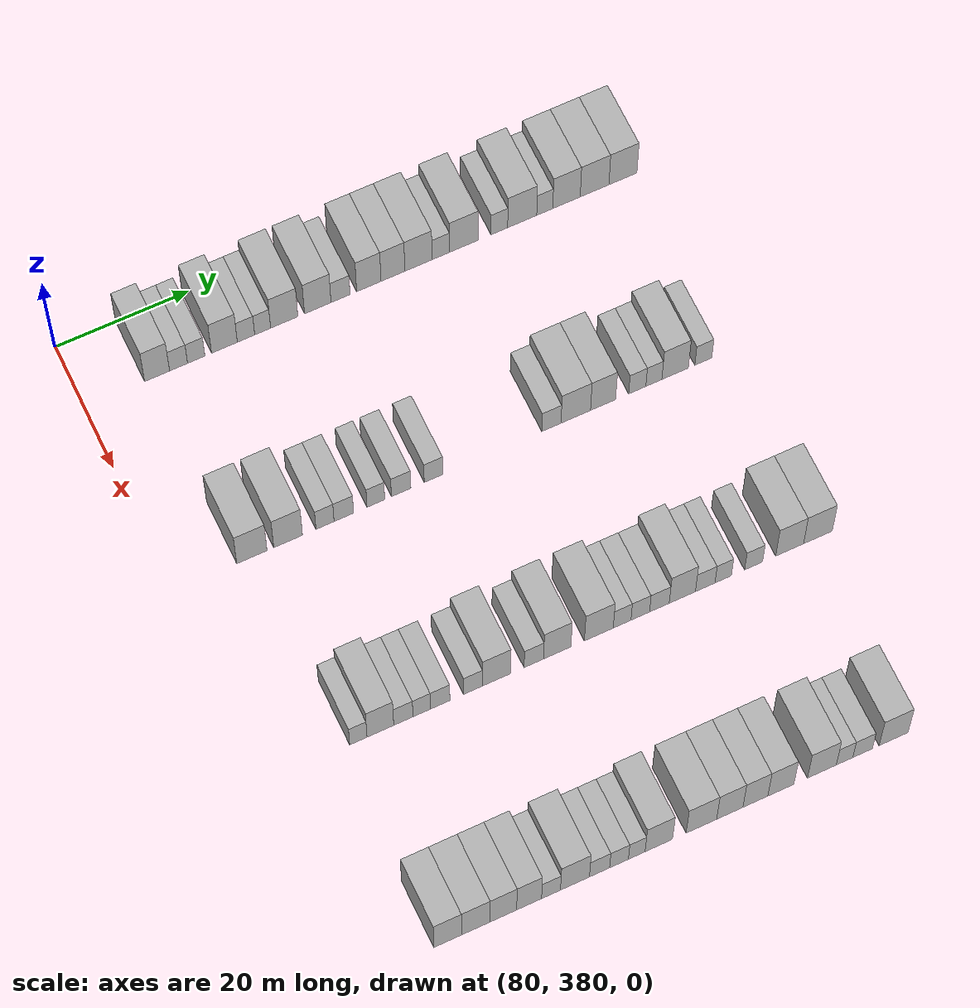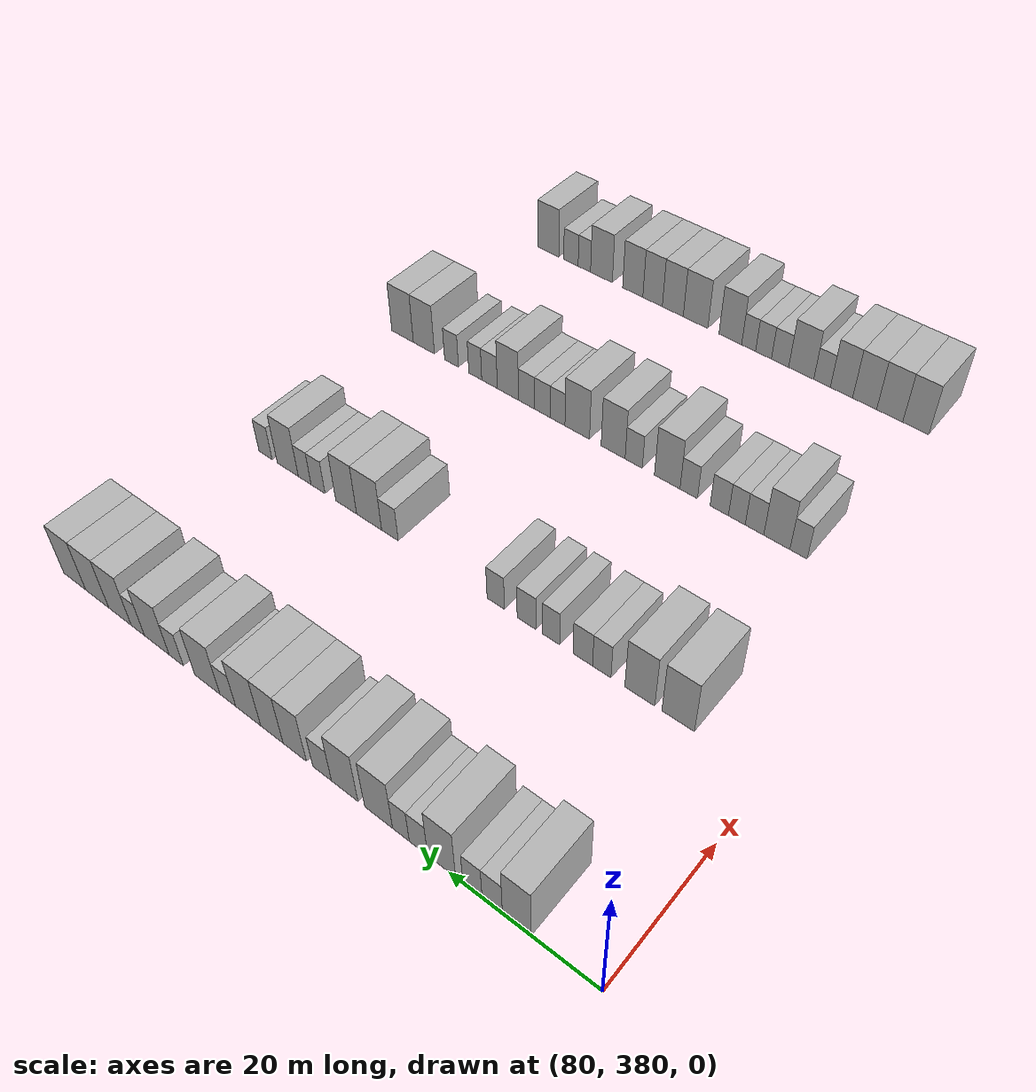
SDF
<sdf version="1.6">
 <world name="default">
  <model name="building_659">
   <static>1</static>
   <pose>85.0000 390.8967 0 0.000000 0.000000 0.000000</pose>
   <link name="link">
    <pose>0 0 4.50 0 0 0</pose>
    <collision name="collision"><geometry><box><size>10.0000 3.7486 9.0000</size></box></geometry></collision>
    <visual name="visual">
     <cast_shadows>0</cast_shadows>
     <geometry><box><size>10.0000 3.7486 9.0000</size></box></geometry>
     <material>
      <script>
       <uri>model://HANNAS_wall/materials/scripts</uri>
       <uri>model://HANNAS_wall/materials/textures</uri>
       <name>vrc/HANNAS_wall</name>
      </script>
     </material>
    </visual>
   </link>
  </model>
  <model name="building_660">
   <static>1</static>
   <pose>85.0000 394.1178 0 0.000000 0.000000 0.000000</pose>
   <link name="link">
    <pose>0 0 3.00 0 0 0</pose>
    <collision name="collision"><geometry><box><size>10.0000 2.6937 6.0000</size></box></geometry></collision>
    <visual name="visual">
     <cast_shadows>0</cast_shadows>
     <geometry><box><size>10.0000 2.6937 6.0000</size></box></geometry>
     <material>
      <script>
       <uri>model://HANNAS_wall/materials/scripts</uri>
       <uri>model://HANNAS_wall/materials/textures</uri>
       <name>vrc/HANNAS_wall</name>
      </script>
     </material>
    </visual>
   </link>
  </model>
  <model name="building_661">
   <static>1</static>
   <pose>85.0000 396.7652 0 0.000000 0.000000 0.000000</pose>
   <link name="link">
    <pose>0 0 3.00 0 0 0</pose>
    <collision name="collision"><geometry><box><size>10.0000 2.6012 6.0000</size></box></geometry></collision>
    <visual name="visual">
     <cast_shadows>0</cast_shadows>
     <geometry><box><size>10.0000 2.6012 6.0000</size></box></geometry>
     <material>
      <script>
       <uri>model://HANNAS_wall/materials/scripts</uri>
       <uri>model://HANNAS_wall/materials/textures</uri>
       <name>vrc/HANNAS_wall</name>
      </script>
     </material>
    </visual>
   </link>
  </model>
  <model name="building_662">
   <static>1</static>
   <pose>85.0000 401.0088 0 0.000000 0.000000 0.000000</pose>
   <link name="link">
    <pose>0 0 4.50 0 0 0</pose>
    <collision name="collision"><geometry><box><size>10.0000 3.8860 9.0000</size></box></geometry></collision>
    <visual name="visual">
     <cast_shadows>0</cast_shadows>
     <geometry><box><size>10.0000 3.8860 9.0000</size></box></geometry>
     <material>
      <script>
       <uri>model://HANNAS_wall/materials/scripts</uri>
       <uri>model://HANNAS_wall/materials/textures</uri>
       <name>vrc/HANNAS_wall</name>
      </script>
     </material>
    </visual>
   </link>
  </model>
  <model name="building_663">
   <static>1</static>
   <pose>85.0000 404.2592 0 0.000000 0.000000 0.000000</pose>
   <link name="link">
    <pose>0 0 3.00 0 0 0</pose>
    <collision name="collision"><geometry><box><size>10.0000 2.6148 6.0000</size></box></geometry></collision>
    <visual name="visual">
     <cast_shadows>0</cast_shadows>
     <geometry><box><size>10.0000 2.6148 6.0000</size></box></geometry>
     <material>
      <script>
       <uri>model://HANNAS_wall/materials/scripts</uri>
       <uri>model://HANNAS_wall/materials/textures</uri>
       <name>vrc/HANNAS_wall</name>
      </script>
     </material>
    </visual>
   </link>
  </model>
  <model name="building_664">
   <static>1</static>
   <pose>85.0000 406.7699 0 0.000000 0.000000 0.000000</pose>
   <link name="link">
    <pose>0 0 3.00 0 0 0</pose>
    <collision name="collision"><geometry><box><size>10.0000 2.4066 6.0000</size></box></geometry></collision>
    <visual name="visual">
     <cast_shadows>0</cast_shadows>
     <geometry><box><size>10.0000 2.4066 6.0000</size></box></geometry>
     <material>
      <script>
       <uri>model://HANNAS_wall/materials/scripts</uri>
       <uri>model://HANNAS_wall/materials/textures</uri>
       <name>vrc/HANNAS_wall</name>
      </script>
     </material>
    </visual>
   </link>
  </model>
  <model name="building_665">
   <static>1</static>
   <pose>85.0000 410.0343 0 0.000000 0.000000 0.000000</pose>
   <link name="link">
    <pose>0 0 4.50 0 0 0</pose>
    <collision name="collision"><geometry><box><size>10.0000 4.1222 9.0000</size></box></geometry></collision>
    <visual name="visual">
     <cast_shadows>0</cast_shadows>
     <geometry><box><size>10.0000 4.1222 9.0000</size></box></geometry>
     <material>
      <script>
       <uri>model://HANNAS_wall/materials/scripts</uri>
       <uri>model://HANNAS_wall/materials/textures</uri>
       <name>vrc/HANNAS_wall</name>
      </script>
     </material>
    </visual>
   </link>
  </model>
  <model name="building_666">
   <static>1</static>
   <pose>85.0000 415.1102 0 0.000000 0.000000 0.000000</pose>
   <link name="link">
    <pose>0 0 4.50 0 0 0</pose>
    <collision name="collision"><geometry><box><size>10.0000 4.0296 9.0000</size></box></geometry></collision>
    <visual name="visual">
     <cast_shadows>0</cast_shadows>
     <geometry><box><size>10.0000 4.0296 9.0000</size></box></geometry>
     <material>
      <script>
       <uri>model://HANNAS_wall/materials/scripts</uri>
       <uri>model://HANNAS_wall/materials/textures</uri>
       <name>vrc/HANNAS_wall</name>
      </script>
     </material>
    </visual>
   </link>
  </model>
  <model name="building_667">
   <static>1</static>
   <pose>85.0000 418.5735 0 0.000000 0.000000 0.000000</pose>
   <link name="link">
    <pose>0 0 3.00 0 0 0</pose>
    <collision name="collision"><geometry><box><size>10.0000 2.8971 6.0000</size></box></geometry></collision>
    <visual name="visual">
     <cast_shadows>0</cast_shadows>
     <geometry><box><size>10.0000 2.8971 6.0000</size></box></geometry>
     <material>
      <script>
       <uri>model://HANNAS_wall/materials/scripts</uri>
       <uri>model://HANNAS_wall/materials/textures</uri>
       <name>vrc/HANNAS_wall</name>
      </script>
     </material>
    </visual>
   </link>
  </model>
  <model name="building_668">
   <static>1</static>
   <pose>85.0000 422.8779 0 0.000000 0.000000 0.000000</pose>
   <link name="link">
    <pose>0 0 4.50 0 0 0</pose>
    <collision name="collision"><geometry><box><size>10.0000 3.7118 9.0000</size></box></geometry></collision>
    <visual name="visual">
     <cast_shadows>0</cast_shadows>
     <geometry><box><size>10.0000 3.7118 9.0000</size></box></geometry>
     <material>
      <script>
       <uri>model://HANNAS_wall/materials/scripts</uri>
       <uri>model://HANNAS_wall/materials/textures</uri>
       <name>vrc/HANNAS_wall</name>
      </script>
     </material>
    </visual>
   </link>
  </model>
  <model name="building_669">
   <static>1</static>
   <pose>85.0000 426.5535 0 0.000000 0.000000 0.000000</pose>
   <link name="link">
    <pose>0 0 4.50 0 0 0</pose>
    <collision name="collision"><geometry><box><size>10.0000 3.6394 9.0000</size></box></geometry></collision>
    <visual name="visual">
     <cast_shadows>0</cast_shadows>
     <geometry><box><size>10.0000 3.6394 9.0000</size></box></geometry>
     <material>
      <script>
       <uri>model://HANNAS_wall/materials/scripts</uri>
       <uri>model://HANNAS_wall/materials/textures</uri>
       <name>vrc/HANNAS_wall</name>
      </script>
     </material>
    </visual>
   </link>
  </model>
  <model name="building_670">
   <static>1</static>
   <pose>85.0000 430.4554 0 0.000000 0.000000 0.000000</pose>
   <link name="link">
    <pose>0 0 4.50 0 0 0</pose>
    <collision name="collision"><geometry><box><size>10.0000 4.1643 9.0000</size></box></geometry></collision>
    <visual name="visual">
     <cast_shadows>0</cast_shadows>
     <geometry><box><size>10.0000 4.1643 9.0000</size></box></geometry>
     <material>
      <script>
       <uri>model://HANNAS_wall/materials/scripts</uri>
       <uri>model://HANNAS_wall/materials/textures</uri>
       <name>vrc/HANNAS_wall</name>
      </script>
     </material>
    </visual>
   </link>
  </model>
  <model name="building_671">
   <static>1</static>
   <pose>85.0000 433.8880 0 0.000000 0.000000 0.000000</pose>
   <link name="link">
    <pose>0 0 3.00 0 0 0</pose>
    <collision name="collision"><geometry><box><size>10.0000 2.7010 6.0000</size></box></geometry></collision>
    <visual name="visual">
     <cast_shadows>0</cast_shadows>
     <geometry><box><size>10.0000 2.7010 6.0000</size></box></geometry>
     <material>
      <script>
       <uri>model://HANNAS_wall/materials/scripts</uri>
       <uri>model://HANNAS_wall/materials/textures</uri>
       <name>vrc/HANNAS_wall</name>
      </script>
     </material>
    </visual>
   </link>
  </model>
  <model name="building_672">
   <static>1</static>
   <pose>85.0000 437.4202 0 0.000000 0.000000 0.000000</pose>
   <link name="link">
    <pose>0 0 4.50 0 0 0</pose>
    <collision name="collision"><geometry><box><size>10.0000 4.3633 9.0000</size></box></geometry></collision>
    <visual name="visual">
     <cast_shadows>0</cast_shadows>
     <geometry><box><size>10.0000 4.3633 9.0000</size></box></geometry>
     <material>
      <script>
       <uri>model://HANNAS_wall/materials/scripts</uri>
       <uri>model://HANNAS_wall/materials/textures</uri>
       <name>vrc/HANNAS_wall</name>
      </script>
     </material>
    </visual>
   </link>
  </model>
  <model name="building_673">
   <static>1</static>
   <pose>85.0000 442.8836 0 0.000000 0.000000 0.000000</pose>
   <link name="link">
    <pose>0 0 3.00 0 0 0</pose>
    <collision name="collision"><geometry><box><size>10.0000 2.5635 6.0000</size></box></geometry></collision>
    <visual name="visual">
     <cast_shadows>0</cast_shadows>
     <geometry><box><size>10.0000 2.5635 6.0000</size></box></geometry>
     <material>
      <script>
       <uri>model://HANNAS_wall/materials/scripts</uri>
       <uri>model://HANNAS_wall/materials/textures</uri>
       <name>vrc/HANNAS_wall</name>
      </script>
     </material>
    </visual>
   </link>
  </model>
  <model name="building_674">
   <static>1</static>
   <pose>85.0000 446.4091 0 0.000000 0.000000 0.000000</pose>
   <link name="link">
    <pose>0 0 4.50 0 0 0</pose>
    <collision name="collision"><geometry><box><size>10.0000 4.4876 9.0000</size></box></geometry></collision>
    <visual name="visual">
     <cast_shadows>0</cast_shadows>
     <geometry><box><size>10.0000 4.4876 9.0000</size></box></geometry>
     <material>
      <script>
       <uri>model://HANNAS_wall/materials/scripts</uri>
       <uri>model://HANNAS_wall/materials/textures</uri>
       <name>vrc/HANNAS_wall</name>
      </script>
     </material>
    </visual>
   </link>
  </model>
  <model name="building_675">
   <static>1</static>
   <pose>85.0000 449.8911 0 0.000000 0.000000 0.000000</pose>
   <link name="link">
    <pose>0 0 3.00 0 0 0</pose>
    <collision name="collision"><geometry><box><size>10.0000 2.4765 6.0000</size></box></geometry></collision>
    <visual name="visual">
     <cast_shadows>0</cast_shadows>
     <geometry><box><size>10.0000 2.4765 6.0000</size></box></geometry>
     <material>
      <script>
       <uri>model://HANNAS_wall/materials/scripts</uri>
       <uri>model://HANNAS_wall/materials/textures</uri>
       <name>vrc/HANNAS_wall</name>
      </script>
     </material>
    </visual>
   </link>
  </model>
  <model name="building_676">
   <static>1</static>
   <pose>85.0000 453.2592 0 0.000000 0.000000 0.000000</pose>
   <link name="link">
    <pose>0 0 4.50 0 0 0</pose>
    <collision name="collision"><geometry><box><size>10.0000 4.2597 9.0000</size></box></geometry></collision>
    <visual name="visual">
     <cast_shadows>0</cast_shadows>
     <geometry><box><size>10.0000 4.2597 9.0000</size></box></geometry>
     <material>
      <script>
       <uri>model://HANNAS_wall/materials/scripts</uri>
       <uri>model://HANNAS_wall/materials/textures</uri>
       <name>vrc/HANNAS_wall</name>
      </script>
     </material>
    </visual>
   </link>
  </model>
  <model name="building_677">
   <static>1</static>
   <pose>85.0000 457.6183 0 0.000000 0.000000 0.000000</pose>
   <link name="link">
    <pose>0 0 4.50 0 0 0</pose>
    <collision name="collision"><geometry><box><size>10.0000 4.4585 9.0000</size></box></geometry></collision>
    <visual name="visual">
     <cast_shadows>0</cast_shadows>
     <geometry><box><size>10.0000 4.4585 9.0000</size></box></geometry>
     <material>
      <script>
       <uri>model://HANNAS_wall/materials/scripts</uri>
       <uri>model://HANNAS_wall/materials/textures</uri>
       <name>vrc/HANNAS_wall</name>
      </script>
     </material>
    </visual>
   </link>
  </model>
  <model name="building_678">
   <static>1</static>
   <pose>85.0000 462.0264 0 0.000000 0.000000 0.000000</pose>
   <link name="link">
    <pose>0 0 4.50 0 0 0</pose>
    <collision name="collision"><geometry><box><size>10.0000 4.3578 9.0000</size></box></geometry></collision>
    <visual name="visual">
     <cast_shadows>0</cast_shadows>
     <geometry><box><size>10.0000 4.3578 9.0000</size></box></geometry>
     <material>
      <script>
       <uri>model://HANNAS_wall/materials/scripts</uri>
       <uri>model://HANNAS_wall/materials/textures</uri>
       <name>vrc/HANNAS_wall</name>
      </script>
     </material>
    </visual>
   </link>
  </model>
  <model name="building_883">
   <static>1</static>
   <pose>115.0000 391.7173 0 0.000000 0.000000 0.000000</pose>
   <link name="link">
    <pose>0 0 4.50 0 0 0</pose>
    <collision name="collision"><geometry><box><size>10.0000 4.4723 9.0000</size></box></geometry></collision>
    <visual name="visual">
     <cast_shadows>0</cast_shadows>
     <geometry><box><size>10.0000 4.4723 9.0000</size></box></geometry>
     <material>
      <script>
       <uri>model://HANNAS_wall/materials/scripts</uri>
       <uri>model://HANNAS_wall/materials/textures</uri>
       <name>vrc/HANNAS_wall</name>
      </script>
     </material>
    </visual>
   </link>
  </model>
  <model name="building_884">
   <static>1</static>
   <pose>115.0000 397.0778 0 0.000000 0.000000 0.000000</pose>
   <link name="link">
    <pose>0 0 4.50 0 0 0</pose>
    <collision name="collision"><geometry><box><size>10.0000 4.2487 9.0000</size></box></geometry></collision>
    <visual name="visual">
     <cast_shadows>0</cast_shadows>
     <geometry><box><size>10.0000 4.2487 9.0000</size></box></geometry>
     <material>
      <script>
       <uri>model://HANNAS_wall/materials/scripts</uri>
       <uri>model://HANNAS_wall/materials/textures</uri>
       <name>vrc/HANNAS_wall</name>
      </script>
     </material>
    </visual>
   </link>
  </model>
  <model name="building_885">
   <static>1</static>
   <pose>115.0000 402.5485 0 0.000000 0.000000 0.000000</pose>
   <link name="link">
    <pose>0 0 3.00 0 0 0</pose>
    <collision name="collision"><geometry><box><size>10.0000 2.6927 6.0000</size></box></geometry></collision>
    <visual name="visual">
     <cast_shadows>0</cast_shadows>
     <geometry><box><size>10.0000 2.6927 6.0000</size></box></geometry>
     <material>
      <script>
       <uri>model://HANNAS_wall/materials/scripts</uri>
       <uri>model://HANNAS_wall/materials/textures</uri>
       <name>vrc/HANNAS_wall</name>
      </script>
     </material>
    </visual>
   </link>
  </model>
  <model name="building_886">
   <static>1</static>
   <pose>115.0000 405.3449 0 0.000000 0.000000 0.000000</pose>
   <link name="link">
    <pose>0 0 3.00 0 0 0</pose>
    <collision name="collision"><geometry><box><size>10.0000 2.9001 6.0000</size></box></geometry></collision>
    <visual name="visual">
     <cast_shadows>0</cast_shadows>
     <geometry><box><size>10.0000 2.9001 6.0000</size></box></geometry>
     <material>
      <script>
       <uri>model://HANNAS_wall/materials/scripts</uri>
       <uri>model://HANNAS_wall/materials/textures</uri>
       <name>vrc/HANNAS_wall</name>
      </script>
     </material>
    </visual>
   </link>
  </model>
  <model name="building_887">
   <static>1</static>
   <pose>115.0000 410.1163 0 0.000000 0.000000 0.000000</pose>
   <link name="link">
    <pose>0 0 3.00 0 0 0</pose>
    <collision name="collision"><geometry><box><size>10.0000 2.6427 6.0000</size></box></geometry></collision>
    <visual name="visual">
     <cast_shadows>0</cast_shadows>
     <geometry><box><size>10.0000 2.6427 6.0000</size></box></geometry>
     <material>
      <script>
       <uri>model://HANNAS_wall/materials/scripts</uri>
       <uri>model://HANNAS_wall/materials/textures</uri>
       <name>vrc/HANNAS_wall</name>
      </script>
     </material>
    </visual>
   </link>
  </model>
  <model name="building_888">
   <static>1</static>
   <pose>115.0000 413.8927 0 0.000000 0.000000 0.000000</pose>
   <link name="link">
    <pose>0 0 3.00 0 0 0</pose>
    <collision name="collision"><geometry><box><size>10.0000 2.9101 6.0000</size></box></geometry></collision>
    <visual name="visual">
     <cast_shadows>0</cast_shadows>
     <geometry><box><size>10.0000 2.9101 6.0000</size></box></geometry>
     <material>
      <script>
       <uri>model://HANNAS_wall/materials/scripts</uri>
       <uri>model://HANNAS_wall/materials/textures</uri>
       <name>vrc/HANNAS_wall</name>
      </script>
     </material>
    </visual>
   </link>
  </model>
  <model name="building_889">
   <static>1</static>
   <pose>115.0000 418.7406 0 0.000000 0.000000 0.000000</pose>
   <link name="link">
    <pose>0 0 3.00 0 0 0</pose>
    <collision name="collision"><geometry><box><size>10.0000 2.7856 6.0000</size></box></geometry></collision>
    <visual name="visual">
     <cast_shadows>0</cast_shadows>
     <geometry><box><size>10.0000 2.7856 6.0000</size></box></geometry>
     <material>
      <script>
       <uri>model://HANNAS_wall/materials/scripts</uri>
       <uri>model://HANNAS_wall/materials/textures</uri>
       <name>vrc/HANNAS_wall</name>
      </script>
     </material>
    </visual>
   </link>
  </model>
  <model name="building_890">
   <static>1</static>
   <pose>115.0000 436.5011 0 0.000000 0.000000 0.000000</pose>
   <link name="link">
    <pose>0 0 3.00 0 0 0</pose>
    <collision name="collision"><geometry><box><size>10.0000 2.9119 6.0000</size></box></geometry></collision>
    <visual name="visual">
     <cast_shadows>0</cast_shadows>
     <geometry><box><size>10.0000 2.9119 6.0000</size></box></geometry>
     <material>
      <script>
       <uri>model://HANNAS_wall/materials/scripts</uri>
       <uri>model://HANNAS_wall/materials/textures</uri>
       <name>vrc/HANNAS_wall</name>
      </script>
     </material>
    </visual>
   </link>
  </model>
  <model name="building_891">
   <static>1</static>
   <pose>115.0000 440.1971 0 0.000000 0.000000 0.000000</pose>
   <link name="link">
    <pose>0 0 4.50 0 0 0</pose>
    <collision name="collision"><geometry><box><size>10.0000 4.4801 9.0000</size></box></geometry></collision>
    <visual name="visual">
     <cast_shadows>0</cast_shadows>
     <geometry><box><size>10.0000 4.4801 9.0000</size></box></geometry>
     <material>
      <script>
       <uri>model://HANNAS_wall/materials/scripts</uri>
       <uri>model://HANNAS_wall/materials/textures</uri>
       <name>vrc/HANNAS_wall</name>
      </script>
     </material>
    </visual>
   </link>
  </model>
  <model name="building_892">
   <static>1</static>
   <pose>115.0000 444.3446 0 0.000000 0.000000 0.000000</pose>
   <link name="link">
    <pose>0 0 4.50 0 0 0</pose>
    <collision name="collision"><geometry><box><size>10.0000 3.8148 9.0000</size></box></geometry></collision>
    <visual name="visual">
     <cast_shadows>0</cast_shadows>
     <geometry><box><size>10.0000 3.8148 9.0000</size></box></geometry>
     <material>
      <script>
       <uri>model://HANNAS_wall/materials/scripts</uri>
       <uri>model://HANNAS_wall/materials/textures</uri>
       <name>vrc/HANNAS_wall</name>
      </script>
     </material>
    </visual>
   </link>
  </model>
  <model name="building_893">
   <static>1</static>
   <pose>115.0000 449.5618 0 0.000000 0.000000 0.000000</pose>
   <link name="link">
    <pose>0 0 3.00 0 0 0</pose>
    <collision name="collision"><geometry><box><size>10.0000 2.6197 6.0000</size></box></geometry></collision>
    <visual name="visual">
     <cast_shadows>0</cast_shadows>
     <geometry><box><size>10.0000 2.6197 6.0000</size></box></geometry>
     <material>
      <script>
       <uri>model://HANNAS_wall/materials/scripts</uri>
       <uri>model://HANNAS_wall/materials/textures</uri>
       <name>vrc/HANNAS_wall</name>
      </script>
     </material>
    </visual>
   </link>
  </model>
  <model name="building_894">
   <static>1</static>
   <pose>115.0000 452.0936 0 0.000000 0.000000 0.000000</pose>
   <link name="link">
    <pose>0 0 3.00 0 0 0</pose>
    <collision name="collision"><geometry><box><size>10.0000 2.4438 6.0000</size></box></geometry></collision>
    <visual name="visual">
     <cast_shadows>0</cast_shadows>
     <geometry><box><size>10.0000 2.4438 6.0000</size></box></geometry>
     <material>
      <script>
       <uri>model://HANNAS_wall/materials/scripts</uri>
       <uri>model://HANNAS_wall/materials/textures</uri>
       <name>vrc/HANNAS_wall</name>
      </script>
     </material>
    </visual>
   </link>
  </model>
  <model name="building_895">
   <static>1</static>
   <pose>115.0000 455.3408 0 0.000000 0.000000 0.000000</pose>
   <link name="link">
    <pose>0 0 4.50 0 0 0</pose>
    <collision name="collision"><geometry><box><size>10.0000 4.0506 9.0000</size></box></geometry></collision>
    <visual name="visual">
     <cast_shadows>0</cast_shadows>
     <geometry><box><size>10.0000 4.0506 9.0000</size></box></geometry>
     <material>
      <script>
       <uri>model://HANNAS_wall/materials/scripts</uri>
       <uri>model://HANNAS_wall/materials/textures</uri>
       <name>vrc/HANNAS_wall</name>
      </script>
     </material>
    </visual>
   </link>
  </model>
  <model name="building_896">
   <static>1</static>
   <pose>115.0000 459.6634 0 0.000000 0.000000 0.000000</pose>
   <link name="link">
    <pose>0 0 3.00 0 0 0</pose>
    <collision name="collision"><geometry><box><size>10.0000 2.5947 6.0000</size></box></geometry></collision>
    <visual name="visual">
     <cast_shadows>0</cast_shadows>
     <geometry><box><size>10.0000 2.5947 6.0000</size></box></geometry>
     <material>
      <script>
       <uri>model://HANNAS_wall/materials/scripts</uri>
       <uri>model://HANNAS_wall/materials/textures</uri>
       <name>vrc/HANNAS_wall</name>
      </script>
     </material>
    </visual>
   </link>
  </model>
  <model name="building_1108">
   <static>1</static>
   <pose>145.0000 393.7304 0 0.000000 0.000000 0.000000</pose>
   <link name="link">
    <pose>0 0 3.00 0 0 0</pose>
    <collision name="collision"><geometry><box><size>10.0000 2.5230 6.0000</size></box></geometry></collision>
    <visual name="visual">
     <cast_shadows>0</cast_shadows>
     <geometry><box><size>10.0000 2.5230 6.0000</size></box></geometry>
     <material>
      <script>
       <uri>model://HANNAS_wall/materials/scripts</uri>
       <uri>model://HANNAS_wall/materials/textures</uri>
       <name>vrc/HANNAS_wall</name>
      </script>
     </material>
    </visual>
   </link>
  </model>
  <model name="building_1109">
   <static>1</static>
   <pose>145.0000 396.9410 0 0.000000 0.000000 0.000000</pose>
   <link name="link">
    <pose>0 0 4.50 0 0 0</pose>
    <collision name="collision"><geometry><box><size>10.0000 3.8980 9.0000</size></box></geometry></collision>
    <visual name="visual">
     <cast_shadows>0</cast_shadows>
     <geometry><box><size>10.0000 3.8980 9.0000</size></box></geometry>
     <material>
      <script>
       <uri>model://HANNAS_wall/materials/scripts</uri>
       <uri>model://HANNAS_wall/materials/textures</uri>
       <name>vrc/HANNAS_wall</name>
      </script>
     </material>
    </visual>
   </link>
  </model>
  <model name="building_1110">
   <static>1</static>
   <pose>145.0000 400.2939 0 0.000000 0.000000 0.000000</pose>
   <link name="link">
    <pose>0 0 3.00 0 0 0</pose>
    <collision name="collision"><geometry><box><size>10.0000 2.8078 6.0000</size></box></geometry></collision>
    <visual name="visual">
     <cast_shadows>0</cast_shadows>
     <geometry><box><size>10.0000 2.8078 6.0000</size></box></geometry>
     <material>
      <script>
       <uri>model://HANNAS_wall/materials/scripts</uri>
       <uri>model://HANNAS_wall/materials/textures</uri>
       <name>vrc/HANNAS_wall</name>
      </script>
     </material>
    </visual>
   </link>
  </model>
  <model name="building_1111">
   <static>1</static>
   <pose>145.0000 402.9874 0 0.000000 0.000000 0.000000</pose>
   <link name="link">
    <pose>0 0 3.00 0 0 0</pose>
    <collision name="collision"><geometry><box><size>10.0000 2.5793 6.0000</size></box></geometry></collision>
    <visual name="visual">
     <cast_shadows>0</cast_shadows>
     <geometry><box><size>10.0000 2.5793 6.0000</size></box></geometry>
     <material>
      <script>
       <uri>model://HANNAS_wall/materials/scripts</uri>
       <uri>model://HANNAS_wall/materials/textures</uri>
       <name>vrc/HANNAS_wall</name>
      </script>
     </material>
    </visual>
   </link>
  </model>
  <model name="building_1112">
   <static>1</static>
   <pose>145.0000 405.6966 0 0.000000 0.000000 0.000000</pose>
   <link name="link">
    <pose>0 0 3.00 0 0 0</pose>
    <collision name="collision"><geometry><box><size>10.0000 2.8390 6.0000</size></box></geometry></collision>
    <visual name="visual">
     <cast_shadows>0</cast_shadows>
     <geometry><box><size>10.0000 2.8390 6.0000</size></box></geometry>
     <material>
      <script>
       <uri>model://HANNAS_wall/materials/scripts</uri>
       <uri>model://HANNAS_wall/materials/textures</uri>
       <name>vrc/HANNAS_wall</name>
      </script>
     </material>
    </visual>
   </link>
  </model>
  <model name="building_1113">
   <static>1</static>
   <pose>145.0000 410.5057 0 0.000000 0.000000 0.000000</pose>
   <link name="link">
    <pose>0 0 3.00 0 0 0</pose>
    <collision name="collision"><geometry><box><size>10.0000 2.7793 6.0000</size></box></geometry></collision>
    <visual name="visual">
     <cast_shadows>0</cast_shadows>
     <geometry><box><size>10.0000 2.7793 6.0000</size></box></geometry>
     <material>
      <script>
       <uri>model://HANNAS_wall/materials/scripts</uri>
       <uri>model://HANNAS_wall/materials/textures</uri>
       <name>vrc/HANNAS_wall</name>
      </script>
     </material>
    </visual>
   </link>
  </model>
  <model name="building_1114">
   <static>1</static>
   <pose>145.0000 413.9718 0 0.000000 0.000000 0.000000</pose>
   <link name="link">
    <pose>0 0 4.50 0 0 0</pose>
    <collision name="collision"><geometry><box><size>10.0000 4.1529 9.0000</size></box></geometry></collision>
    <visual name="visual">
     <cast_shadows>0</cast_shadows>
     <geometry><box><size>10.0000 4.1529 9.0000</size></box></geometry>
     <material>
      <script>
       <uri>model://HANNAS_wall/materials/scripts</uri>
       <uri>model://HANNAS_wall/materials/textures</uri>
       <name>vrc/HANNAS_wall</name>
      </script>
     </material>
    </visual>
   </link>
  </model>
  <model name="building_1115">
   <static>1</static>
   <pose>145.0000 419.4825 0 0.000000 0.000000 0.000000</pose>
   <link name="link">
    <pose>0 0 3.00 0 0 0</pose>
    <collision name="collision"><geometry><box><size>10.0000 2.8685 6.0000</size></box></geometry></collision>
    <visual name="visual">
     <cast_shadows>0</cast_shadows>
     <geometry><box><size>10.0000 2.8685 6.0000</size></box></geometry>
     <material>
      <script>
       <uri>model://HANNAS_wall/materials/scripts</uri>
       <uri>model://HANNAS_wall/materials/textures</uri>
       <name>vrc/HANNAS_wall</name>
      </script>
     </material>
    </visual>
   </link>
  </model>
  <model name="building_1116">
   <static>1</static>
   <pose>145.0000 422.9478 0 0.000000 0.000000 0.000000</pose>
   <link name="link">
    <pose>0 0 4.50 0 0 0</pose>
    <collision name="collision"><geometry><box><size>10.0000 4.0619 9.0000</size></box></geometry></collision>
    <visual name="visual">
     <cast_shadows>0</cast_shadows>
     <geometry><box><size>10.0000 4.0619 9.0000</size></box></geometry>
     <material>
      <script>
       <uri>model://HANNAS_wall/materials/scripts</uri>
       <uri>model://HANNAS_wall/materials/textures</uri>
       <name>vrc/HANNAS_wall</name>
      </script>
     </material>
    </visual>
   </link>
  </model>
  <model name="building_1117">
   <static>1</static>
   <pose>145.0000 429.1238 0 0.000000 0.000000 0.000000</pose>
   <link name="link">
    <pose>0 0 4.50 0 0 0</pose>
    <collision name="collision"><geometry><box><size>10.0000 4.2901 9.0000</size></box></geometry></collision>
    <visual name="visual">
     <cast_shadows>0</cast_shadows>
     <geometry><box><size>10.0000 4.2901 9.0000</size></box></geometry>
     <material>
      <script>
       <uri>model://HANNAS_wall/materials/scripts</uri>
       <uri>model://HANNAS_wall/materials/textures</uri>
       <name>vrc/HANNAS_wall</name>
      </script>
     </material>
    </visual>
   </link>
  </model>
  <model name="building_1118">
   <static>1</static>
   <pose>145.0000 432.5885 0 0.000000 0.000000 0.000000</pose>
   <link name="link">
    <pose>0 0 3.00 0 0 0</pose>
    <collision name="collision"><geometry><box><size>10.0000 2.6394 6.0000</size></box></geometry></collision>
    <visual name="visual">
     <cast_shadows>0</cast_shadows>
     <geometry><box><size>10.0000 2.6394 6.0000</size></box></geometry>
     <material>
      <script>
       <uri>model://HANNAS_wall/materials/scripts</uri>
       <uri>model://HANNAS_wall/materials/textures</uri>
       <name>vrc/HANNAS_wall</name>
      </script>
     </material>
    </visual>
   </link>
  </model>
  <model name="building_1119">
   <static>1</static>
   <pose>145.0000 435.2955 0 0.000000 0.000000 0.000000</pose>
   <link name="link">
    <pose>0 0 3.00 0 0 0</pose>
    <collision name="collision"><geometry><box><size>10.0000 2.7747 6.0000</size></box></geometry></collision>
    <visual name="visual">
     <cast_shadows>0</cast_shadows>
     <geometry><box><size>10.0000 2.7747 6.0000</size></box></geometry>
     <material>
      <script>
       <uri>model://HANNAS_wall/materials/scripts</uri>
       <uri>model://HANNAS_wall/materials/textures</uri>
       <name>vrc/HANNAS_wall</name>
      </script>
     </material>
    </visual>
   </link>
  </model>
  <model name="building_1120">
   <static>1</static>
   <pose>145.0000 438.1511 0 0.000000 0.000000 0.000000</pose>
   <link name="link">
    <pose>0 0 3.00 0 0 0</pose>
    <collision name="collision"><geometry><box><size>10.0000 2.9365 6.0000</size></box></geometry></collision>
    <visual name="visual">
     <cast_shadows>0</cast_shadows>
     <geometry><box><size>10.0000 2.9365 6.0000</size></box></geometry>
     <material>
      <script>
       <uri>model://HANNAS_wall/materials/scripts</uri>
       <uri>model://HANNAS_wall/materials/textures</uri>
       <name>vrc/HANNAS_wall</name>
      </script>
     </material>
    </visual>
   </link>
  </model>
  <model name="building_1121">
   <static>1</static>
   <pose>145.0000 441.5852 0 0.000000 0.000000 0.000000</pose>
   <link name="link">
    <pose>0 0 4.50 0 0 0</pose>
    <collision name="collision"><geometry><box><size>10.0000 3.9318 9.0000</size></box></geometry></collision>
    <visual name="visual">
     <cast_shadows>0</cast_shadows>
     <geometry><box><size>10.0000 3.9318 9.0000</size></box></geometry>
     <material>
      <script>
       <uri>model://HANNAS_wall/materials/scripts</uri>
       <uri>model://HANNAS_wall/materials/textures</uri>
       <name>vrc/HANNAS_wall</name>
      </script>
     </material>
    </visual>
   </link>
  </model>
  <model name="building_1122">
   <static>1</static>
   <pose>145.0000 445.0174 0 0.000000 0.000000 0.000000</pose>
   <link name="link">
    <pose>0 0 3.00 0 0 0</pose>
    <collision name="collision"><geometry><box><size>10.0000 2.9326 6.0000</size></box></geometry></collision>
    <visual name="visual">
     <cast_shadows>0</cast_shadows>
     <geometry><box><size>10.0000 2.9326 6.0000</size></box></geometry>
     <material>
      <script>
       <uri>model://HANNAS_wall/materials/scripts</uri>
       <uri>model://HANNAS_wall/materials/textures</uri>
       <name>vrc/HANNAS_wall</name>
      </script>
     </material>
    </visual>
   </link>
  </model>
  <model name="building_1123">
   <static>1</static>
   <pose>145.0000 447.7133 0 0.000000 0.000000 0.000000</pose>
   <link name="link">
    <pose>0 0 3.00 0 0 0</pose>
    <collision name="collision"><geometry><box><size>10.0000 2.4592 6.0000</size></box></geometry></collision>
    <visual name="visual">
     <cast_shadows>0</cast_shadows>
     <geometry><box><size>10.0000 2.4592 6.0000</size></box></geometry>
     <material>
      <script>
       <uri>model://HANNAS_wall/materials/scripts</uri>
       <uri>model://HANNAS_wall/materials/textures</uri>
       <name>vrc/HANNAS_wall</name>
      </script>
     </material>
    </visual>
   </link>
  </model>
  <model name="building_1124">
   <static>1</static>
   <pose>145.0000 452.2894 0 0.000000 0.000000 0.000000</pose>
   <link name="link">
    <pose>0 0 3.00 0 0 0</pose>
    <collision name="collision"><geometry><box><size>10.0000 2.6930 6.0000</size></box></geometry></collision>
    <visual name="visual">
     <cast_shadows>0</cast_shadows>
     <geometry><box><size>10.0000 2.6930 6.0000</size></box></geometry>
     <material>
      <script>
       <uri>model://HANNAS_wall/materials/scripts</uri>
       <uri>model://HANNAS_wall/materials/textures</uri>
       <name>vrc/HANNAS_wall</name>
      </script>
     </material>
    </visual>
   </link>
  </model>
  <model name="building_1125">
   <static>1</static>
   <pose>145.0000 457.7427 0 0.000000 0.000000 0.000000</pose>
   <link name="link">
    <pose>0 0 4.50 0 0 0</pose>
    <collision name="collision"><geometry><box><size>10.0000 4.2135 9.0000</size></box></geometry></collision>
    <visual name="visual">
     <cast_shadows>0</cast_shadows>
     <geometry><box><size>10.0000 4.2135 9.0000</size></box></geometry>
     <material>
      <script>
       <uri>model://HANNAS_wall/materials/scripts</uri>
       <uri>model://HANNAS_wall/materials/textures</uri>
       <name>vrc/HANNAS_wall</name>
      </script>
     </material>
    </visual>
   </link>
  </model>
  <model name="building_1126">
   <static>1</static>
   <pose>145.0000 462.0256 0 0.000000 0.000000 0.000000</pose>
   <link name="link">
    <pose>0 0 4.50 0 0 0</pose>
    <collision name="collision"><geometry><box><size>10.0000 4.3524 9.0000</size></box></geometry></collision>
    <visual name="visual">
     <cast_shadows>0</cast_shadows>
     <geometry><box><size>10.0000 4.3524 9.0000</size></box></geometry>
     <material>
      <script>
       <uri>model://HANNAS_wall/materials/scripts</uri>
       <uri>model://HANNAS_wall/materials/textures</uri>
       <name>vrc/HANNAS_wall</name>
      </script>
     </material>
    </visual>
   </link>
  </model>
  <model name="building_1343">
   <static>1</static>
   <pose>175.0000 392.7279 0 0.000000 0.000000 0.000000</pose>
   <link name="link">
    <pose>0 0 4.50 0 0 0</pose>
    <collision name="collision"><geometry><box><size>10.0000 3.9852 9.0000</size></box></geometry></collision>
    <visual name="visual">
     <cast_shadows>0</cast_shadows>
     <geometry><box><size>10.0000 3.9852 9.0000</size></box></geometry>
     <material>
      <script>
       <uri>model://HANNAS_wall/materials/scripts</uri>
       <uri>model://HANNAS_wall/materials/textures</uri>
       <name>vrc/HANNAS_wall</name>
      </script>
     </material>
    </visual>
   </link>
  </model>
  <model name="building_1344">
   <static>1</static>
   <pose>175.0000 396.7612 0 0.000000 0.000000 0.000000</pose>
   <link name="link">
    <pose>0 0 4.50 0 0 0</pose>
    <collision name="collision"><geometry><box><size>10.0000 4.0814 9.0000</size></box></geometry></collision>
    <visual name="visual">
     <cast_shadows>0</cast_shadows>
     <geometry><box><size>10.0000 4.0814 9.0000</size></box></geometry>
     <material>
      <script>
       <uri>model://HANNAS_wall/materials/scripts</uri>
       <uri>model://HANNAS_wall/materials/textures</uri>
       <name>vrc/HANNAS_wall</name>
      </script>
     </material>
    </visual>
   </link>
  </model>
  <model name="building_1345">
   <static>1</static>
   <pose>175.0000 400.7213 0 0.000000 0.000000 0.000000</pose>
   <link name="link">
    <pose>0 0 4.50 0 0 0</pose>
    <collision name="collision"><geometry><box><size>10.0000 3.8387 9.0000</size></box></geometry></collision>
    <visual name="visual">
     <cast_shadows>0</cast_shadows>
     <geometry><box><size>10.0000 3.8387 9.0000</size></box></geometry>
     <material>
      <script>
       <uri>model://HANNAS_wall/materials/scripts</uri>
       <uri>model://HANNAS_wall/materials/textures</uri>
       <name>vrc/HANNAS_wall</name>
      </script>
     </material>
    </visual>
   </link>
  </model>
  <model name="building_1346">
   <static>1</static>
   <pose>175.0000 404.4414 0 0.000000 0.000000 0.000000</pose>
   <link name="link">
    <pose>0 0 4.50 0 0 0</pose>
    <collision name="collision"><geometry><box><size>10.0000 3.6014 9.0000</size></box></geometry></collision>
    <visual name="visual">
     <cast_shadows>0</cast_shadows>
     <geometry><box><size>10.0000 3.6014 9.0000</size></box></geometry>
     <material>
      <script>
       <uri>model://HANNAS_wall/materials/scripts</uri>
       <uri>model://HANNAS_wall/materials/textures</uri>
       <name>vrc/HANNAS_wall</name>
      </script>
     </material>
    </visual>
   </link>
  </model>
  <model name="building_1347">
   <static>1</static>
   <pose>175.0000 407.6078 0 0.000000 0.000000 0.000000</pose>
   <link name="link">
    <pose>0 0 3.00 0 0 0</pose>
    <collision name="collision"><geometry><box><size>10.0000 2.7313 6.0000</size></box></geometry></collision>
    <visual name="visual">
     <cast_shadows>0</cast_shadows>
     <geometry><box><size>10.0000 2.7313 6.0000</size></box></geometry>
     <material>
      <script>
       <uri>model://HANNAS_wall/materials/scripts</uri>
       <uri>model://HANNAS_wall/materials/textures</uri>
       <name>vrc/HANNAS_wall</name>
      </script>
     </material>
    </visual>
   </link>
  </model>
  <model name="building_1348">
   <static>1</static>
   <pose>175.0000 411.0781 0 0.000000 0.000000 0.000000</pose>
   <link name="link">
    <pose>0 0 4.50 0 0 0</pose>
    <collision name="collision"><geometry><box><size>10.0000 4.2094 9.0000</size></box></geometry></collision>
    <visual name="visual">
     <cast_shadows>0</cast_shadows>
     <geometry><box><size>10.0000 4.2094 9.0000</size></box></geometry>
     <material>
      <script>
       <uri>model://HANNAS_wall/materials/scripts</uri>
       <uri>model://HANNAS_wall/materials/textures</uri>
       <name>vrc/HANNAS_wall</name>
      </script>
     </material>
    </visual>
   </link>
  </model>
  <model name="building_1349">
   <static>1</static>
   <pose>175.0000 414.6487 0 0.000000 0.000000 0.000000</pose>
   <link name="link">
    <pose>0 0 3.00 0 0 0</pose>
    <collision name="collision"><geometry><box><size>10.0000 2.9317 6.0000</size></box></geometry></collision>
    <visual name="visual">
     <cast_shadows>0</cast_shadows>
     <geometry><box><size>10.0000 2.9317 6.0000</size></box></geometry>
     <material>
      <script>
       <uri>model://HANNAS_wall/materials/scripts</uri>
       <uri>model://HANNAS_wall/materials/textures</uri>
       <name>vrc/HANNAS_wall</name>
      </script>
     </material>
    </visual>
   </link>
  </model>
  <model name="building_1350">
   <static>1</static>
   <pose>175.0000 417.4789 0 0.000000 0.000000 0.000000</pose>
   <link name="link">
    <pose>0 0 3.00 0 0 0</pose>
    <collision name="collision"><geometry><box><size>10.0000 2.7289 6.0000</size></box></geometry></collision>
    <visual name="visual">
     <cast_shadows>0</cast_shadows>
     <geometry><box><size>10.0000 2.7289 6.0000</size></box></geometry>
     <material>
      <script>
       <uri>model://HANNAS_wall/materials/scripts</uri>
       <uri>model://HANNAS_wall/materials/textures</uri>
       <name>vrc/HANNAS_wall</name>
      </script>
     </material>
    </visual>
   </link>
  </model>
  <model name="building_1351">
   <static>1</static>
   <pose>175.0000 420.0589 0 0.000000 0.000000 0.000000</pose>
   <link name="link">
    <pose>0 0 3.00 0 0 0</pose>
    <collision name="collision"><geometry><box><size>10.0000 2.4311 6.0000</size></box></geometry></collision>
    <visual name="visual">
     <cast_shadows>0</cast_shadows>
     <geometry><box><size>10.0000 2.4311 6.0000</size></box></geometry>
     <material>
      <script>
       <uri>model://HANNAS_wall/materials/scripts</uri>
       <uri>model://HANNAS_wall/materials/textures</uri>
       <name>vrc/HANNAS_wall</name>
      </script>
     </material>
    </visual>
   </link>
  </model>
  <model name="building_1352">
   <static>1</static>
   <pose>175.0000 423.2772 0 0.000000 0.000000 0.000000</pose>
   <link name="link">
    <pose>0 0 4.50 0 0 0</pose>
    <collision name="collision"><geometry><box><size>10.0000 4.0055 9.0000</size></box></geometry></collision>
    <visual name="visual">
     <cast_shadows>0</cast_shadows>
     <geometry><box><size>10.0000 4.0055 9.0000</size></box></geometry>
     <material>
      <script>
       <uri>model://HANNAS_wall/materials/scripts</uri>
       <uri>model://HANNAS_wall/materials/textures</uri>
       <name>vrc/HANNAS_wall</name>
      </script>
     </material>
    </visual>
   </link>
  </model>
  <model name="building_1353">
   <static>1</static>
   <pose>175.0000 429.5111 0 0.000000 0.000000 0.000000</pose>
   <link name="link">
    <pose>0 0 4.50 0 0 0</pose>
    <collision name="collision"><geometry><box><size>10.0000 4.4622 9.0000</size></box></geometry></collision>
    <visual name="visual">
     <cast_shadows>0</cast_shadows>
     <geometry><box><size>10.0000 4.4622 9.0000</size></box></geometry>
     <material>
      <script>
       <uri>model://HANNAS_wall/materials/scripts</uri>
       <uri>model://HANNAS_wall/materials/textures</uri>
       <name>vrc/HANNAS_wall</name>
      </script>
     </material>
    </visual>
   </link>
  </model>
  <model name="building_1354">
   <static>1</static>
   <pose>175.0000 433.6790 0 0.000000 0.000000 0.000000</pose>
   <link name="link">
    <pose>0 0 4.50 0 0 0</pose>
    <collision name="collision"><geometry><box><size>10.0000 3.8736 9.0000</size></box></geometry></collision>
    <visual name="visual">
     <cast_shadows>0</cast_shadows>
     <geometry><box><size>10.0000 3.8736 9.0000</size></box></geometry>
     <material>
      <script>
       <uri>model://HANNAS_wall/materials/scripts</uri>
       <uri>model://HANNAS_wall/materials/textures</uri>
       <name>vrc/HANNAS_wall</name>
      </script>
     </material>
    </visual>
   </link>
  </model>
  <model name="building_1355">
   <static>1</static>
   <pose>175.0000 437.4481 0 0.000000 0.000000 0.000000</pose>
   <link name="link">
    <pose>0 0 4.50 0 0 0</pose>
    <collision name="collision"><geometry><box><size>10.0000 3.6646 9.0000</size></box></geometry></collision>
    <visual name="visual">
     <cast_shadows>0</cast_shadows>
     <geometry><box><size>10.0000 3.6646 9.0000</size></box></geometry>
     <material>
      <script>
       <uri>model://HANNAS_wall/materials/scripts</uri>
       <uri>model://HANNAS_wall/materials/textures</uri>
       <name>vrc/HANNAS_wall</name>
      </script>
     </material>
    </visual>
   </link>
  </model>
  <model name="building_1356">
   <static>1</static>
   <pose>175.0000 441.2097 0 0.000000 0.000000 0.000000</pose>
   <link name="link">
    <pose>0 0 4.50 0 0 0</pose>
    <collision name="collision"><geometry><box><size>10.0000 3.8587 9.0000</size></box></geometry></collision>
    <visual name="visual">
     <cast_shadows>0</cast_shadows>
     <geometry><box><size>10.0000 3.8587 9.0000</size></box></geometry>
     <material>
      <script>
       <uri>model://HANNAS_wall/materials/scripts</uri>
       <uri>model://HANNAS_wall/materials/textures</uri>
       <name>vrc/HANNAS_wall</name>
      </script>
     </material>
    </visual>
   </link>
  </model>
  <model name="building_1357">
   <static>1</static>
   <pose>175.0000 447.2759 0 0.000000 0.000000 0.000000</pose>
   <link name="link">
    <pose>0 0 4.50 0 0 0</pose>
    <collision name="collision"><geometry><box><size>10.0000 4.2738 9.0000</size></box></geometry></collision>
    <visual name="visual">
     <cast_shadows>0</cast_shadows>
     <geometry><box><size>10.0000 4.2738 9.0000</size></box></geometry>
     <material>
      <script>
       <uri>model://HANNAS_wall/materials/scripts</uri>
       <uri>model://HANNAS_wall/materials/textures</uri>
       <name>vrc/HANNAS_wall</name>
      </script>
     </material>
    </visual>
   </link>
  </model>
  <model name="building_1358">
   <static>1</static>
   <pose>175.0000 450.6448 0 0.000000 0.000000 0.000000</pose>
   <link name="link">
    <pose>0 0 3.00 0 0 0</pose>
    <collision name="collision"><geometry><box><size>10.0000 2.4639 6.0000</size></box></geometry></collision>
    <visual name="visual">
     <cast_shadows>0</cast_shadows>
     <geometry><box><size>10.0000 2.4639 6.0000</size></box></geometry>
     <material>
      <script>
       <uri>model://HANNAS_wall/materials/scripts</uri>
       <uri>model://HANNAS_wall/materials/textures</uri>
       <name>vrc/HANNAS_wall</name>
      </script>
     </material>
    </visual>
   </link>
  </model>
  <model name="building_1359">
   <static>1</static>
   <pose>175.0000 453.3234 0 0.000000 0.000000 0.000000</pose>
   <link name="link">
    <pose>0 0 3.00 0 0 0</pose>
    <collision name="collision"><geometry><box><size>10.0000 2.8933 6.0000</size></box></geometry></collision>
    <visual name="visual">
     <cast_shadows>0</cast_shadows>
     <geometry><box><size>10.0000 2.8933 6.0000</size></box></geometry>
     <material>
      <script>
       <uri>model://HANNAS_wall/materials/scripts</uri>
       <uri>model://HANNAS_wall/materials/textures</uri>
       <name>vrc/HANNAS_wall</name>
      </script>
     </material>
    </visual>
   </link>
  </model>
  <model name="building_1360">
   <static>1</static>
   <pose>175.0000 457.9292 0 0.000000 0.000000 0.000000</pose>
   <link name="link">
    <pose>0 0 4.50 0 0 0</pose>
    <collision name="collision"><geometry><box><size>10.0000 4.3183 9.0000</size></box></geometry></collision>
    <visual name="visual">
     <cast_shadows>0</cast_shadows>
     <geometry><box><size>10.0000 4.3183 9.0000</size></box></geometry>
     <material>
      <script>
       <uri>model://HANNAS_wall/materials/scripts</uri>
       <uri>model://HANNAS_wall/materials/textures</uri>
       <name>vrc/HANNAS_wall</name>
      </script>
     </material>
    </visual>
   </link>
  </model>
 </world>
</sdf>
